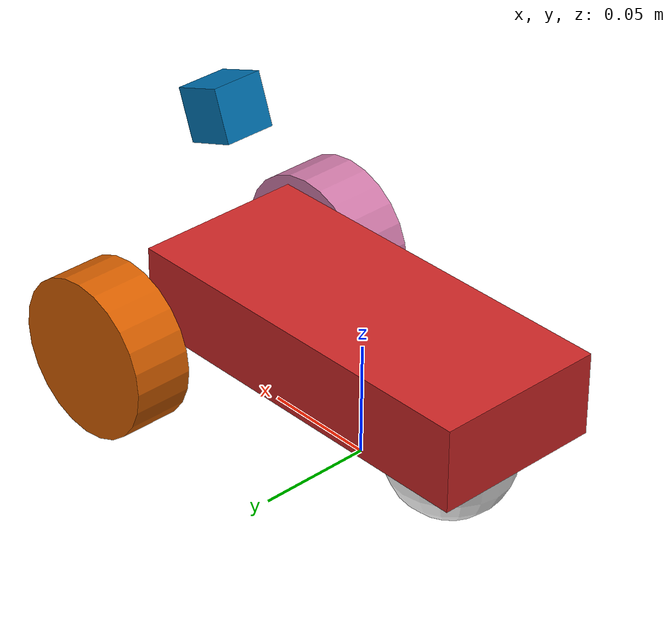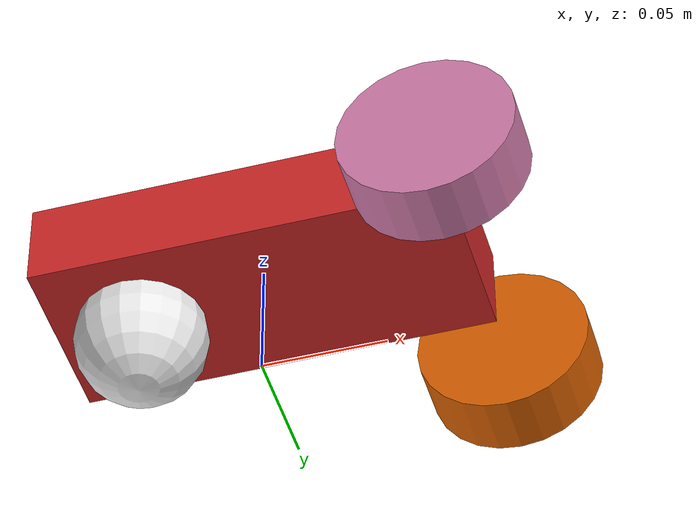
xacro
<?xml version="1.0"?>
<robot name="gzbbot" xmlns:xacro="http://www.ros.org/wiki/xacro">

################################################################################
	<xacro:property name="veh" value="gzbbot"/>
	<xacro:property name="chassisHeight" value="0.0365"/>
	<xacro:property name="chassisLength" value="0.17"/>
	<xacro:property name="chassisWidth" value="0.075"/>
	<xacro:property name="chassisMass" value="0.38"/>     <!--unit:kg-->
	<xacro:property name="chassisXpos" value="0"/>
	<xacro:property name="chassisYpos" value="0"/>
	<xacro:property name="chassisZpos" value="0.054"/>
	<xacro:property name="mass" value="5"/>

	<xacro:property name="length_wheel" value="0.026"/>
	<xacro:property name="radius_wheel" value="0.035"/>
	<xacro:property name="wheelPos" value="0.06"/>  <!--distance between head-->

	<xacro:property name="casterRadius" value="0.027"/>
	<xacro:property name="casterMass" value="0.007"/>

	<xacro:property name="cameraSize" value="0.023"/>
	<xacro:property name="cameraMass" value="0.0003"/>

        <xacro:include filename="$(find rc_car_description)/urdf/test_bot.gazebo" />
        <xacro:include filename="$(find rc_car_description)/urdf/wheel.xacro" />
################################################################################

<link name='chassis'>
    <collision>
        <origin xyz="${chassisXpos} ${chassisYpos} ${chassisZpos}" rpy="0 0 0"/>
        <geometry>
            <box size="${chassisLength} ${chassisWidth} ${chassisHeight}"/>
        </geometry>
    </collision>
    <visual>
        <origin xyz="${chassisXpos} ${chassisYpos} ${chassisZpos}" rpy="0 0 0"/>
        <geometry>
            <box size="${chassisLength} ${chassisWidth} ${chassisHeight}"/>
        </geometry>
    </visual>
    <inertial>
        <mass value="${mass}" />
        <box_inertia m="${mass}" x="${chassisLength}" y="${chassisWidth}" z="${chassisHeight}"/>
    </inertial>
</link>

<link name="base_footprint" />

<joint name="base_joint" type="fixed">
  <parent link="base_footprint"/>
  <child link="base_link"/>
</joint>

<link name="base_link" />

<joint name="base_link_joint" type="fixed">
  <parent link="base_link"/>
  <child link="chassis"/>
</joint>

<link name="caster_wheel_back">
    <collision>
        <origin xyz="0 0 0" rpy="0 0 0"/>
        <geometry>
            <sphere radius="${casterRadius}"/>
        </geometry>
    </collision>
    <visual>
        <origin xyz="0 0 0" rpy="0 0 0"/>
        <geometry>
            <sphere radius="${casterRadius}"/>
        </geometry>
    </visual>
    <inertial>
        <origin xyz="0 0 0" rpy="0 0 0"/>
        <mass value="${casterMass}"/>
        <sphere_inertia m="${casterMass}" r="${casterRadius}"/>
    </inertial>
</link>

 <link name="camera_link">
    <collision>
      <origin xyz="0 0 0" rpy="0 0 0"/>
      <geometry>
	<box size="${cameraSize} ${cameraSize} ${cameraSize}"/>
      </geometry>
    </collision>

    <visual>
      <origin xyz="0 0 0" rpy="0 0 0"/>
      <geometry>
        <!--mesh scale ="0.1 0.1 0.1" filename="package://rc_car_description/meshes/duckiebotcam.dae"/-->
	<box size="${cameraSize} ${cameraSize} ${cameraSize}"/>
      </geometry>
    </visual>
  <inertial>
    <origin xyz="0 0 0" rpy="0 0 0"/>
    <mass value="${cameraMass}"/>
    <inertia ixx="1.0" ixy="0.0" ixz="0.0" iyy="1.0" iyz="0.0" izz="1.0" />
  </inertial>
  </link>

######################################################################################

<wheel n1234="1" fb = "1"  lr="1"  />
<wheel n1234="2" fb = "1"  lr="-1" />
<!--wheel n1234="3" fb = "-1" lr="1" /-->
<!--wheel n1234="4" fb = "-1" lr="-1" /-->

######################################################################################

<joint name="camera_joint" type="fixed">
    <origin xyz="0.08 0 0.12475" rpy="0 0.349 0"/>
    <parent link="chassis"/>
    <child link="camera_link"/>
</joint>

<joint name="chassis_to_caster" type="fixed">
    <origin xyz="-0.05 0 ${casterRadius}" rpy="0 0 0" />
    <parent link="chassis"/>
    <child link="caster_wheel_back"/>
</joint>

######################################################################################

 <transmission name="base_to_wheel1_joint_motor">
  <type>transmission_interface/SimpleTransmission</type>
  <joint name="base_to_wheel1">
    <hardwareInterface>EffortJointInterface</hardwareInterface>
  </joint>
  <actuator name="base_to_wheel1_joint_motor">
    <hardwareInterface>EffortJointInterface</hardwareInterface>
    <mechanicalReduction>10</mechanicalReduction>
  </actuator>
 </transmission>

 <transmission name="base_to_wheel2_joint_motor">
  <type>transmission_interface/SimpleTransmission</type>
  <joint name="base_to_wheel2">
    <hardwareInterface>EffortJointInterface</hardwareInterface>
  </joint>
  <actuator name="base_to_wheel2_joint_motor">
    <hardwareInterface>EffortJointInterface</hardwareInterface>
    <mechanicalReduction>10</mechanicalReduction>
  </actuator>
 </transmission>

########################################################################################
</robot>

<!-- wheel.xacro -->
<robot>

<macro name="cylinder_inertia" params="m r h">
  <inertia  ixx="${m*(3*r*r+h*h)/12}" ixy = "0" ixz = "0"
    iyy="${m*(3*r*r+h*h)/12}" iyz = "0"
    izz="${m*r*r/2}"/>
</macro>

<macro name="box_inertia" params="m x y z">
  <inertia  ixx="${m*(y*y+z*z)/12}" ixy = "0" ixz = "0"
    iyy="${m*(x*x+z*z)/12}" iyz = "0"
    izz="${m*(x*x+z*z)/12}"/>
</macro>

<macro name="sphere_inertia" params="m r">
  <inertia  ixx="${2*m*r*r/5}" ixy = "0" ixz = "0"
    iyy="${2*m*r*r/5}" iyz = "0"
    izz="${2*m*r*r/5}"/>
</macro>

<macro name="wheel" params="n1234 fb lr">

<link name="wheel_${n1234}">
  <collision>
    <origin xyz="0 0 0" rpy="0 0 0" />
    <geometry>
      <cylinder length="${length_wheel}" radius="${radius_wheel}"/>
    </geometry>
  </collision>

  <visual>
    <origin xyz="0 0 0" rpy="0 0 0" />
    <geometry>
      <cylinder length="${length_wheel}" radius="${radius_wheel}"/>
    </geometry>
  </visual>

    <inertial>
      <mass value="0.06" />
      <cylinder_inertia m="0.06" r="${radius_wheel}" h="${length_wheel}"/>
  </inertial>
</link>

<gazebo reference="wheel_${n1234}">
  <mu1 value="100000"/>
  <mu2 value="100000"/>
  <kp  value="100000000000.0" />
  <kd  value="1.0" />
  <fdir1 value="0 1 0"/>
</gazebo>

<joint name="base_to_wheel${n1234}" type="continuous">
  <parent link="chassis"/>
  <child link="wheel_${n1234}"/>
  <origin xyz="${fb*chassisLength*0.5} ${lr*wheelPos} ${radius_wheel}" rpy="1.5707 0 0" />
  <axis xyz="0 0 -1" />
</joint>
</macro>
</robot>
